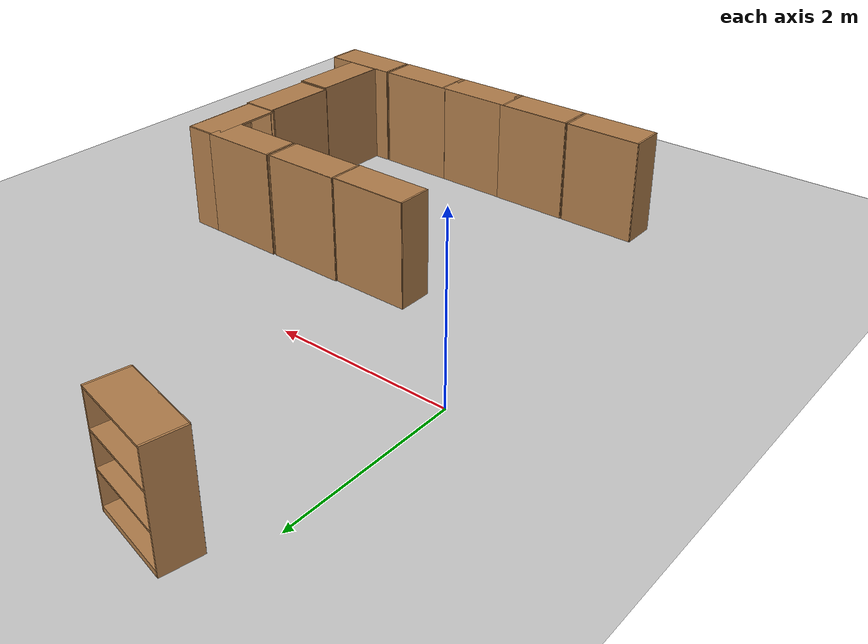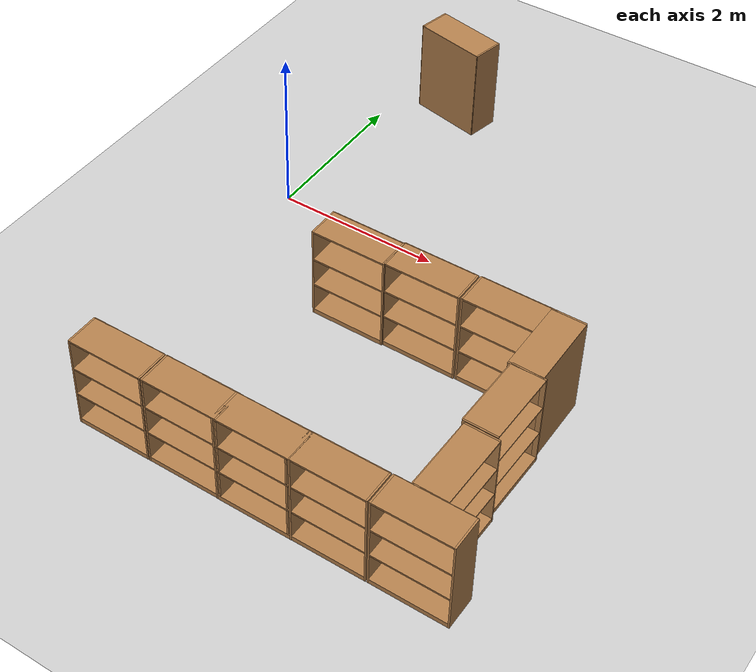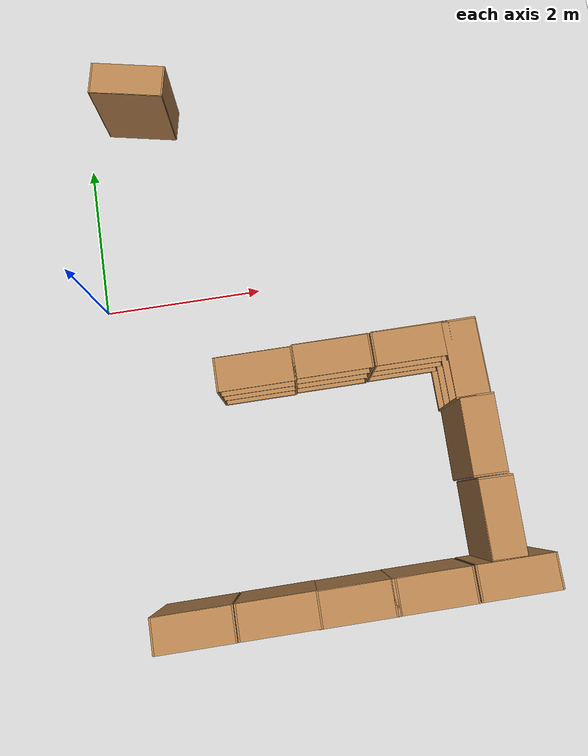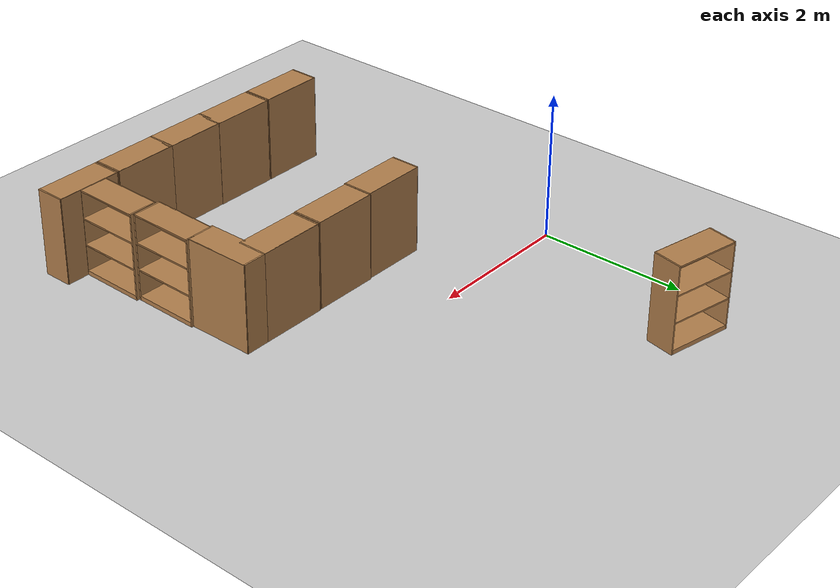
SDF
<sdf version="1.7">
 <world name="default">
  <model name="ground_plane">
   <static>1</static>
   <link name="link">
    <collision name="collision">
     <geometry><plane><normal>0 0 1</normal><size>100 100</size></plane></geometry>
     <surface>
      <contact><collide_bitmask>65535</collide_bitmask></contact>
      <friction><ode><mu>100</mu><mu2>50</mu2></ode></friction>
     </surface>
    </collision>
    <visual name="visual">
     <cast_shadows>0</cast_shadows>
     <geometry><plane><normal>0 0 1</normal><size>100 100</size></plane></geometry>
     <material>
      <script><uri>file://media/materials/scripts/gazebo.material</uri><name>Gazebo/Grey</name></script>
     </material>
    </visual>
   </link>
  </model>
  <model name="bookshelf_4">
   <static>1</static>
   <link name="link">
    <inertial><mass>1</mass></inertial>
    <collision name="back">
     <pose>0 0.005 0.6 0 -0 0</pose>
     <geometry><box><size>0.9 0.01 1.2</size></box></geometry>
    </collision>
    <visual name="visual1">
     <pose>0 0.005 0.6 0 -0 0</pose>
     <geometry><box><size>0.9 0.01 1.2</size></box></geometry>
     <material>
      <script><uri>file://media/materials/scripts/gazebo.material</uri><name>Gazebo/Wood</name></script>
     </material>
    </visual>
    <collision name="left_side">
     <pose>0.45 -0.195 0.6 0 -0 0</pose>
     <geometry><box><size>0.02 0.4 1.2</size></box></geometry>
    </collision>
    <visual name="visual2">
     <pose>0.45 -0.195 0.6 0 -0 0</pose>
     <geometry><box><size>0.02 0.4 1.2</size></box></geometry>
     <material>
      <script><uri>file://media/materials/scripts/gazebo.material</uri><name>Gazebo/Wood</name></script>
     </material>
    </visual>
    <collision name="right_side">
     <pose>-0.45 -0.195 0.6 0 -0 0</pose>
     <geometry><box><size>0.02 0.4 1.2</size></box></geometry>
    </collision>
    <visual name="visual3">
     <pose>-0.45 -0.195 0.6 0 -0 0</pose>
     <geometry><box><size>0.02 0.4 1.2</size></box></geometry>
     <material>
      <script><uri>file://media/materials/scripts/gazebo.material</uri><name>Gazebo/Wood</name></script>
     </material>
    </visual>
    <collision name="bottom">
     <pose>0 -0.195 0.03 0 -0 0</pose>
     <geometry><box><size>0.88 0.4 0.06</size></box></geometry>
    </collision>
    <visual name="visual4">
     <pose>0 -0.195 0.03 0 -0 0</pose>
     <geometry><box><size>0.88 0.4 0.06</size></box></geometry>
     <material>
      <script><uri>file://media/materials/scripts/gazebo.material</uri><name>Gazebo/Wood</name></script>
     </material>
    </visual>
    <collision name="top">
     <pose>0 -0.195 1.19 0 -0 0</pose>
     <geometry><box><size>0.88 0.4 0.02</size></box></geometry>
    </collision>
    <visual name="visual5">
     <pose>0 -0.195 1.19 0 -0 0</pose>
     <geometry><box><size>0.88 0.4 0.02</size></box></geometry>
     <material>
      <script><uri>file://media/materials/scripts/gazebo.material</uri><name>Gazebo/Wood</name></script>
     </material>
    </visual>
    <collision name="low_shelf">
     <pose>0 -0.195 0.43 0 -0 0</pose>
     <geometry><box><size>0.88 0.4 0.02</size></box></geometry>
    </collision>
    <visual name="visual6">
     <pose>0 -0.195 0.43 0 -0 0</pose>
     <geometry><box><size>0.88 0.4 0.02</size></box></geometry>
     <material>
      <script><uri>file://media/materials/scripts/gazebo.material</uri><name>Gazebo/Wood</name></script>
     </material>
    </visual>
    <collision name="high_shelf">
     <pose>0 -0.195 0.8 0 -0 0</pose>
     <geometry><box><size>0.88 0.4 0.02</size></box></geometry>
    </collision>
    <visual name="visual7">
     <pose>0 -0.195 0.8 0 -0 0</pose>
     <geometry><box><size>0.88 0.4 0.02</size></box></geometry>
     <material>
      <script><uri>file://media/materials/scripts/gazebo.material</uri><name>Gazebo/Wood</name></script>
     </material>
    </visual>
   </link>
   <pose>0.772368 -3.75609 0 0 -0 0</pose>
  </model>
  <model name="bookshelf_5">
   <static>1</static>
   <link name="link">
    <inertial><mass>1</mass></inertial>
    <collision name="back">
     <pose>0 0.005 0.6 0 -0 0</pose>
     <geometry><box><size>0.9 0.01 1.2</size></box></geometry>
    </collision>
    <visual name="visual1">
     <pose>0 0.005 0.6 0 -0 0</pose>
     <geometry><box><size>0.9 0.01 1.2</size></box></geometry>
     <material>
      <script><uri>file://media/materials/scripts/gazebo.material</uri><name>Gazebo/Wood</name></script>
     </material>
    </visual>
    <collision name="left_side">
     <pose>0.45 -0.195 0.6 0 -0 0</pose>
     <geometry><box><size>0.02 0.4 1.2</size></box></geometry>
    </collision>
    <visual name="visual2">
     <pose>0.45 -0.195 0.6 0 -0 0</pose>
     <geometry><box><size>0.02 0.4 1.2</size></box></geometry>
     <material>
      <script><uri>file://media/materials/scripts/gazebo.material</uri><name>Gazebo/Wood</name></script>
     </material>
    </visual>
    <collision name="right_side">
     <pose>-0.45 -0.195 0.6 0 -0 0</pose>
     <geometry><box><size>0.02 0.4 1.2</size></box></geometry>
    </collision>
    <visual name="visual3">
     <pose>-0.45 -0.195 0.6 0 -0 0</pose>
     <geometry><box><size>0.02 0.4 1.2</size></box></geometry>
     <material>
      <script><uri>file://media/materials/scripts/gazebo.material</uri><name>Gazebo/Wood</name></script>
     </material>
    </visual>
    <collision name="bottom">
     <pose>0 -0.195 0.03 0 -0 0</pose>
     <geometry><box><size>0.88 0.4 0.06</size></box></geometry>
    </collision>
    <visual name="visual4">
     <pose>0 -0.195 0.03 0 -0 0</pose>
     <geometry><box><size>0.88 0.4 0.06</size></box></geometry>
     <material>
      <script><uri>file://media/materials/scripts/gazebo.material</uri><name>Gazebo/Wood</name></script>
     </material>
    </visual>
    <collision name="top">
     <pose>0 -0.195 1.19 0 -0 0</pose>
     <geometry><box><size>0.88 0.4 0.02</size></box></geometry>
    </collision>
    <visual name="visual5">
     <pose>0 -0.195 1.19 0 -0 0</pose>
     <geometry><box><size>0.88 0.4 0.02</size></box></geometry>
     <material>
      <script><uri>file://media/materials/scripts/gazebo.material</uri><name>Gazebo/Wood</name></script>
     </material>
    </visual>
    <collision name="low_shelf">
     <pose>0 -0.195 0.43 0 -0 0</pose>
     <geometry><box><size>0.88 0.4 0.02</size></box></geometry>
    </collision>
    <visual name="visual6">
     <pose>0 -0.195 0.43 0 -0 0</pose>
     <geometry><box><size>0.88 0.4 0.02</size></box></geometry>
     <material>
      <script><uri>file://media/materials/scripts/gazebo.material</uri><name>Gazebo/Wood</name></script>
     </material>
    </visual>
    <collision name="high_shelf">
     <pose>0 -0.195 0.8 0 -0 0</pose>
     <geometry><box><size>0.88 0.4 0.02</size></box></geometry>
    </collision>
    <visual name="visual7">
     <pose>0 -0.195 0.8 0 -0 0</pose>
     <geometry><box><size>0.88 0.4 0.02</size></box></geometry>
     <material>
      <script><uri>file://media/materials/scripts/gazebo.material</uri><name>Gazebo/Wood</name></script>
     </material>
    </visual>
   </link>
   <pose>1.6996 -3.75399 0 0 -0 0</pose>
  </model>
  <model name="bookshelf_6">
   <static>1</static>
   <link name="link">
    <inertial><mass>1</mass></inertial>
    <collision name="back">
     <pose>0 0.005 0.6 0 -0 0</pose>
     <geometry><box><size>0.9 0.01 1.2</size></box></geometry>
    </collision>
    <visual name="visual1">
     <pose>0 0.005 0.6 0 -0 0</pose>
     <geometry><box><size>0.9 0.01 1.2</size></box></geometry>
     <material>
      <script><uri>file://media/materials/scripts/gazebo.material</uri><name>Gazebo/Wood</name></script>
     </material>
    </visual>
    <collision name="left_side">
     <pose>0.45 -0.195 0.6 0 -0 0</pose>
     <geometry><box><size>0.02 0.4 1.2</size></box></geometry>
    </collision>
    <visual name="visual2">
     <pose>0.45 -0.195 0.6 0 -0 0</pose>
     <geometry><box><size>0.02 0.4 1.2</size></box></geometry>
     <material>
      <script><uri>file://media/materials/scripts/gazebo.material</uri><name>Gazebo/Wood</name></script>
     </material>
    </visual>
    <collision name="right_side">
     <pose>-0.45 -0.195 0.6 0 -0 0</pose>
     <geometry><box><size>0.02 0.4 1.2</size></box></geometry>
    </collision>
    <visual name="visual3">
     <pose>-0.45 -0.195 0.6 0 -0 0</pose>
     <geometry><box><size>0.02 0.4 1.2</size></box></geometry>
     <material>
      <script><uri>file://media/materials/scripts/gazebo.material</uri><name>Gazebo/Wood</name></script>
     </material>
    </visual>
    <collision name="bottom">
     <pose>0 -0.195 0.03 0 -0 0</pose>
     <geometry><box><size>0.88 0.4 0.06</size></box></geometry>
    </collision>
    <visual name="visual4">
     <pose>0 -0.195 0.03 0 -0 0</pose>
     <geometry><box><size>0.88 0.4 0.06</size></box></geometry>
     <material>
      <script><uri>file://media/materials/scripts/gazebo.material</uri><name>Gazebo/Wood</name></script>
     </material>
    </visual>
    <collision name="top">
     <pose>0 -0.195 1.19 0 -0 0</pose>
     <geometry><box><size>0.88 0.4 0.02</size></box></geometry>
    </collision>
    <visual name="visual5">
     <pose>0 -0.195 1.19 0 -0 0</pose>
     <geometry><box><size>0.88 0.4 0.02</size></box></geometry>
     <material>
      <script><uri>file://media/materials/scripts/gazebo.material</uri><name>Gazebo/Wood</name></script>
     </material>
    </visual>
    <collision name="low_shelf">
     <pose>0 -0.195 0.43 0 -0 0</pose>
     <geometry><box><size>0.88 0.4 0.02</size></box></geometry>
    </collision>
    <visual name="visual6">
     <pose>0 -0.195 0.43 0 -0 0</pose>
     <geometry><box><size>0.88 0.4 0.02</size></box></geometry>
     <material>
      <script><uri>file://media/materials/scripts/gazebo.material</uri><name>Gazebo/Wood</name></script>
     </material>
    </visual>
    <collision name="high_shelf">
     <pose>0 -0.195 0.8 0 -0 0</pose>
     <geometry><box><size>0.88 0.4 0.02</size></box></geometry>
    </collision>
    <visual name="visual7">
     <pose>0 -0.195 0.8 0 -0 0</pose>
     <geometry><box><size>0.88 0.4 0.02</size></box></geometry>
     <material>
      <script><uri>file://media/materials/scripts/gazebo.material</uri><name>Gazebo/Wood</name></script>
     </material>
    </visual>
   </link>
   <pose>1.82439 -1.04453 0 0 -0 0</pose>
  </model>
  <model name="bookshelf_7">
   <static>1</static>
   <link name="link">
    <inertial><mass>1</mass></inertial>
    <collision name="back">
     <pose>0 0.005 0.6 0 -0 0</pose>
     <geometry><box><size>0.9 0.01 1.2</size></box></geometry>
    </collision>
    <visual name="visual1">
     <pose>0 0.005 0.6 0 -0 0</pose>
     <geometry><box><size>0.9 0.01 1.2</size></box></geometry>
     <material>
      <script><uri>file://media/materials/scripts/gazebo.material</uri><name>Gazebo/Wood</name></script>
     </material>
    </visual>
    <collision name="left_side">
     <pose>0.45 -0.195 0.6 0 -0 0</pose>
     <geometry><box><size>0.02 0.4 1.2</size></box></geometry>
    </collision>
    <visual name="visual2">
     <pose>0.45 -0.195 0.6 0 -0 0</pose>
     <geometry><box><size>0.02 0.4 1.2</size></box></geometry>
     <material>
      <script><uri>file://media/materials/scripts/gazebo.material</uri><name>Gazebo/Wood</name></script>
     </material>
    </visual>
    <collision name="right_side">
     <pose>-0.45 -0.195 0.6 0 -0 0</pose>
     <geometry><box><size>0.02 0.4 1.2</size></box></geometry>
    </collision>
    <visual name="visual3">
     <pose>-0.45 -0.195 0.6 0 -0 0</pose>
     <geometry><box><size>0.02 0.4 1.2</size></box></geometry>
     <material>
      <script><uri>file://media/materials/scripts/gazebo.material</uri><name>Gazebo/Wood</name></script>
     </material>
    </visual>
    <collision name="bottom">
     <pose>0 -0.195 0.03 0 -0 0</pose>
     <geometry><box><size>0.88 0.4 0.06</size></box></geometry>
    </collision>
    <visual name="visual4">
     <pose>0 -0.195 0.03 0 -0 0</pose>
     <geometry><box><size>0.88 0.4 0.06</size></box></geometry>
     <material>
      <script><uri>file://media/materials/scripts/gazebo.material</uri><name>Gazebo/Wood</name></script>
     </material>
    </visual>
    <collision name="top">
     <pose>0 -0.195 1.19 0 -0 0</pose>
     <geometry><box><size>0.88 0.4 0.02</size></box></geometry>
    </collision>
    <visual name="visual5">
     <pose>0 -0.195 1.19 0 -0 0</pose>
     <geometry><box><size>0.88 0.4 0.02</size></box></geometry>
     <material>
      <script><uri>file://media/materials/scripts/gazebo.material</uri><name>Gazebo/Wood</name></script>
     </material>
    </visual>
    <collision name="low_shelf">
     <pose>0 -0.195 0.43 0 -0 0</pose>
     <geometry><box><size>0.88 0.4 0.02</size></box></geometry>
    </collision>
    <visual name="visual6">
     <pose>0 -0.195 0.43 0 -0 0</pose>
     <geometry><box><size>0.88 0.4 0.02</size></box></geometry>
     <material>
      <script><uri>file://media/materials/scripts/gazebo.material</uri><name>Gazebo/Wood</name></script>
     </material>
    </visual>
    <collision name="high_shelf">
     <pose>0 -0.195 0.8 0 -0 0</pose>
     <geometry><box><size>0.88 0.4 0.02</size></box></geometry>
    </collision>
    <visual name="visual7">
     <pose>0 -0.195 0.8 0 -0 0</pose>
     <geometry><box><size>0.88 0.4 0.02</size></box></geometry>
     <material>
      <script><uri>file://media/materials/scripts/gazebo.material</uri><name>Gazebo/Wood</name></script>
     </material>
    </visual>
   </link>
   <pose>2.56274 -3.75756 0 0 -0 0</pose>
  </model>
  <model name="bookshelf_8">
   <static>1</static>
   <link name="link">
    <inertial><mass>1</mass></inertial>
    <collision name="back">
     <pose>0 0.005 0.6 0 -0 0</pose>
     <geometry><box><size>0.9 0.01 1.2</size></box></geometry>
    </collision>
    <visual name="visual1">
     <pose>0 0.005 0.6 0 -0 0</pose>
     <geometry><box><size>0.9 0.01 1.2</size></box></geometry>
     <material>
      <script><uri>file://media/materials/scripts/gazebo.material</uri><name>Gazebo/Wood</name></script>
     </material>
    </visual>
    <collision name="left_side">
     <pose>0.45 -0.195 0.6 0 -0 0</pose>
     <geometry><box><size>0.02 0.4 1.2</size></box></geometry>
    </collision>
    <visual name="visual2">
     <pose>0.45 -0.195 0.6 0 -0 0</pose>
     <geometry><box><size>0.02 0.4 1.2</size></box></geometry>
     <material>
      <script><uri>file://media/materials/scripts/gazebo.material</uri><name>Gazebo/Wood</name></script>
     </material>
    </visual>
    <collision name="right_side">
     <pose>-0.45 -0.195 0.6 0 -0 0</pose>
     <geometry><box><size>0.02 0.4 1.2</size></box></geometry>
    </collision>
    <visual name="visual3">
     <pose>-0.45 -0.195 0.6 0 -0 0</pose>
     <geometry><box><size>0.02 0.4 1.2</size></box></geometry>
     <material>
      <script><uri>file://media/materials/scripts/gazebo.material</uri><name>Gazebo/Wood</name></script>
     </material>
    </visual>
    <collision name="bottom">
     <pose>0 -0.195 0.03 0 -0 0</pose>
     <geometry><box><size>0.88 0.4 0.06</size></box></geometry>
    </collision>
    <visual name="visual4">
     <pose>0 -0.195 0.03 0 -0 0</pose>
     <geometry><box><size>0.88 0.4 0.06</size></box></geometry>
     <material>
      <script><uri>file://media/materials/scripts/gazebo.material</uri><name>Gazebo/Wood</name></script>
     </material>
    </visual>
    <collision name="top">
     <pose>0 -0.195 1.19 0 -0 0</pose>
     <geometry><box><size>0.88 0.4 0.02</size></box></geometry>
    </collision>
    <visual name="visual5">
     <pose>0 -0.195 1.19 0 -0 0</pose>
     <geometry><box><size>0.88 0.4 0.02</size></box></geometry>
     <material>
      <script><uri>file://media/materials/scripts/gazebo.material</uri><name>Gazebo/Wood</name></script>
     </material>
    </visual>
    <collision name="low_shelf">
     <pose>0 -0.195 0.43 0 -0 0</pose>
     <geometry><box><size>0.88 0.4 0.02</size></box></geometry>
    </collision>
    <visual name="visual6">
     <pose>0 -0.195 0.43 0 -0 0</pose>
     <geometry><box><size>0.88 0.4 0.02</size></box></geometry>
     <material>
      <script><uri>file://media/materials/scripts/gazebo.material</uri><name>Gazebo/Wood</name></script>
     </material>
    </visual>
    <collision name="high_shelf">
     <pose>0 -0.195 0.8 0 -0 0</pose>
     <geometry><box><size>0.88 0.4 0.02</size></box></geometry>
    </collision>
    <visual name="visual7">
     <pose>0 -0.195 0.8 0 -0 0</pose>
     <geometry><box><size>0.88 0.4 0.02</size></box></geometry>
     <material>
      <script><uri>file://media/materials/scripts/gazebo.material</uri><name>Gazebo/Wood</name></script>
     </material>
    </visual>
   </link>
   <pose>2.73157 -1.02877 0 0 -0 0</pose>
  </model>
  <model name="bookshelf_9">
   <static>1</static>
   <link name="link">
    <inertial><mass>1</mass></inertial>
    <collision name="back">
     <pose>0 0.005 0.6 0 -0 0</pose>
     <geometry><box><size>0.9 0.01 1.2</size></box></geometry>
    </collision>
    <visual name="visual1">
     <pose>0 0.005 0.6 0 -0 0</pose>
     <geometry><box><size>0.9 0.01 1.2</size></box></geometry>
     <material>
      <script><uri>file://media/materials/scripts/gazebo.material</uri><name>Gazebo/Wood</name></script>
     </material>
    </visual>
    <collision name="left_side">
     <pose>0.45 -0.195 0.6 0 -0 0</pose>
     <geometry><box><size>0.02 0.4 1.2</size></box></geometry>
    </collision>
    <visual name="visual2">
     <pose>0.45 -0.195 0.6 0 -0 0</pose>
     <geometry><box><size>0.02 0.4 1.2</size></box></geometry>
     <material>
      <script><uri>file://media/materials/scripts/gazebo.material</uri><name>Gazebo/Wood</name></script>
     </material>
    </visual>
    <collision name="right_side">
     <pose>-0.45 -0.195 0.6 0 -0 0</pose>
     <geometry><box><size>0.02 0.4 1.2</size></box></geometry>
    </collision>
    <visual name="visual3">
     <pose>-0.45 -0.195 0.6 0 -0 0</pose>
     <geometry><box><size>0.02 0.4 1.2</size></box></geometry>
     <material>
      <script><uri>file://media/materials/scripts/gazebo.material</uri><name>Gazebo/Wood</name></script>
     </material>
    </visual>
    <collision name="bottom">
     <pose>0 -0.195 0.03 0 -0 0</pose>
     <geometry><box><size>0.88 0.4 0.06</size></box></geometry>
    </collision>
    <visual name="visual4">
     <pose>0 -0.195 0.03 0 -0 0</pose>
     <geometry><box><size>0.88 0.4 0.06</size></box></geometry>
     <material>
      <script><uri>file://media/materials/scripts/gazebo.material</uri><name>Gazebo/Wood</name></script>
     </material>
    </visual>
    <collision name="top">
     <pose>0 -0.195 1.19 0 -0 0</pose>
     <geometry><box><size>0.88 0.4 0.02</size></box></geometry>
    </collision>
    <visual name="visual5">
     <pose>0 -0.195 1.19 0 -0 0</pose>
     <geometry><box><size>0.88 0.4 0.02</size></box></geometry>
     <material>
      <script><uri>file://media/materials/scripts/gazebo.material</uri><name>Gazebo/Wood</name></script>
     </material>
    </visual>
    <collision name="low_shelf">
     <pose>0 -0.195 0.43 0 -0 0</pose>
     <geometry><box><size>0.88 0.4 0.02</size></box></geometry>
    </collision>
    <visual name="visual6">
     <pose>0 -0.195 0.43 0 -0 0</pose>
     <geometry><box><size>0.88 0.4 0.02</size></box></geometry>
     <material>
      <script><uri>file://media/materials/scripts/gazebo.material</uri><name>Gazebo/Wood</name></script>
     </material>
    </visual>
    <collision name="high_shelf">
     <pose>0 -0.195 0.8 0 -0 0</pose>
     <geometry><box><size>0.88 0.4 0.02</size></box></geometry>
    </collision>
    <visual name="visual7">
     <pose>0 -0.195 0.8 0 -0 0</pose>
     <geometry><box><size>0.88 0.4 0.02</size></box></geometry>
     <material>
      <script><uri>file://media/materials/scripts/gazebo.material</uri><name>Gazebo/Wood</name></script>
     </material>
    </visual>
   </link>
   <pose>3.42347 -3.75551 0 0 -0 0</pose>
  </model>
  <model name="bookshelf_10">
   <static>1</static>
   <link name="link">
    <inertial><mass>1</mass></inertial>
    <collision name="back">
     <pose>0 0.005 0.6 0 -0 0</pose>
     <geometry><box><size>0.9 0.01 1.2</size></box></geometry>
    </collision>
    <visual name="visual1">
     <pose>0 0.005 0.6 0 -0 0</pose>
     <geometry><box><size>0.9 0.01 1.2</size></box></geometry>
     <material>
      <script><uri>file://media/materials/scripts/gazebo.material</uri><name>Gazebo/Wood</name></script>
     </material>
    </visual>
    <collision name="left_side">
     <pose>0.45 -0.195 0.6 0 -0 0</pose>
     <geometry><box><size>0.02 0.4 1.2</size></box></geometry>
    </collision>
    <visual name="visual2">
     <pose>0.45 -0.195 0.6 0 -0 0</pose>
     <geometry><box><size>0.02 0.4 1.2</size></box></geometry>
     <material>
      <script><uri>file://media/materials/scripts/gazebo.material</uri><name>Gazebo/Wood</name></script>
     </material>
    </visual>
    <collision name="right_side">
     <pose>-0.45 -0.195 0.6 0 -0 0</pose>
     <geometry><box><size>0.02 0.4 1.2</size></box></geometry>
    </collision>
    <visual name="visual3">
     <pose>-0.45 -0.195 0.6 0 -0 0</pose>
     <geometry><box><size>0.02 0.4 1.2</size></box></geometry>
     <material>
      <script><uri>file://media/materials/scripts/gazebo.material</uri><name>Gazebo/Wood</name></script>
     </material>
    </visual>
    <collision name="bottom">
     <pose>0 -0.195 0.03 0 -0 0</pose>
     <geometry><box><size>0.88 0.4 0.06</size></box></geometry>
    </collision>
    <visual name="visual4">
     <pose>0 -0.195 0.03 0 -0 0</pose>
     <geometry><box><size>0.88 0.4 0.06</size></box></geometry>
     <material>
      <script><uri>file://media/materials/scripts/gazebo.material</uri><name>Gazebo/Wood</name></script>
     </material>
    </visual>
    <collision name="top">
     <pose>0 -0.195 1.19 0 -0 0</pose>
     <geometry><box><size>0.88 0.4 0.02</size></box></geometry>
    </collision>
    <visual name="visual5">
     <pose>0 -0.195 1.19 0 -0 0</pose>
     <geometry><box><size>0.88 0.4 0.02</size></box></geometry>
     <material>
      <script><uri>file://media/materials/scripts/gazebo.material</uri><name>Gazebo/Wood</name></script>
     </material>
    </visual>
    <collision name="low_shelf">
     <pose>0 -0.195 0.43 0 -0 0</pose>
     <geometry><box><size>0.88 0.4 0.02</size></box></geometry>
    </collision>
    <visual name="visual6">
     <pose>0 -0.195 0.43 0 -0 0</pose>
     <geometry><box><size>0.88 0.4 0.02</size></box></geometry>
     <material>
      <script><uri>file://media/materials/scripts/gazebo.material</uri><name>Gazebo/Wood</name></script>
     </material>
    </visual>
    <collision name="high_shelf">
     <pose>0 -0.195 0.8 0 -0 0</pose>
     <geometry><box><size>0.88 0.4 0.02</size></box></geometry>
    </collision>
    <visual name="visual7">
     <pose>0 -0.195 0.8 0 -0 0</pose>
     <geometry><box><size>0.88 0.4 0.02</size></box></geometry>
     <material>
      <script><uri>file://media/materials/scripts/gazebo.material</uri><name>Gazebo/Wood</name></script>
     </material>
    </visual>
   </link>
   <pose>3.66527 -1.02019 0 0 -0 0</pose>
  </model>
  <model name="bookshelf_11">
   <static>1</static>
   <link name="link">
    <inertial><mass>1</mass></inertial>
    <collision name="back">
     <pose>0 0.005 0.6 0 -0 0</pose>
     <geometry><box><size>0.9 0.01 1.2</size></box></geometry>
    </collision>
    <visual name="visual1">
     <pose>0 0.005 0.6 0 -0 0</pose>
     <geometry><box><size>0.9 0.01 1.2</size></box></geometry>
     <material>
      <script><uri>file://media/materials/scripts/gazebo.material</uri><name>Gazebo/Wood</name></script>
     </material>
    </visual>
    <collision name="left_side">
     <pose>0.45 -0.195 0.6 0 -0 0</pose>
     <geometry><box><size>0.02 0.4 1.2</size></box></geometry>
    </collision>
    <visual name="visual2">
     <pose>0.45 -0.195 0.6 0 -0 0</pose>
     <geometry><box><size>0.02 0.4 1.2</size></box></geometry>
     <material>
      <script><uri>file://media/materials/scripts/gazebo.material</uri><name>Gazebo/Wood</name></script>
     </material>
    </visual>
    <collision name="right_side">
     <pose>-0.45 -0.195 0.6 0 -0 0</pose>
     <geometry><box><size>0.02 0.4 1.2</size></box></geometry>
    </collision>
    <visual name="visual3">
     <pose>-0.45 -0.195 0.6 0 -0 0</pose>
     <geometry><box><size>0.02 0.4 1.2</size></box></geometry>
     <material>
      <script><uri>file://media/materials/scripts/gazebo.material</uri><name>Gazebo/Wood</name></script>
     </material>
    </visual>
    <collision name="bottom">
     <pose>0 -0.195 0.03 0 -0 0</pose>
     <geometry><box><size>0.88 0.4 0.06</size></box></geometry>
    </collision>
    <visual name="visual4">
     <pose>0 -0.195 0.03 0 -0 0</pose>
     <geometry><box><size>0.88 0.4 0.06</size></box></geometry>
     <material>
      <script><uri>file://media/materials/scripts/gazebo.material</uri><name>Gazebo/Wood</name></script>
     </material>
    </visual>
    <collision name="top">
     <pose>0 -0.195 1.19 0 -0 0</pose>
     <geometry><box><size>0.88 0.4 0.02</size></box></geometry>
    </collision>
    <visual name="visual5">
     <pose>0 -0.195 1.19 0 -0 0</pose>
     <geometry><box><size>0.88 0.4 0.02</size></box></geometry>
     <material>
      <script><uri>file://media/materials/scripts/gazebo.material</uri><name>Gazebo/Wood</name></script>
     </material>
    </visual>
    <collision name="low_shelf">
     <pose>0 -0.195 0.43 0 -0 0</pose>
     <geometry><box><size>0.88 0.4 0.02</size></box></geometry>
    </collision>
    <visual name="visual6">
     <pose>0 -0.195 0.43 0 -0 0</pose>
     <geometry><box><size>0.88 0.4 0.02</size></box></geometry>
     <material>
      <script><uri>file://media/materials/scripts/gazebo.material</uri><name>Gazebo/Wood</name></script>
     </material>
    </visual>
    <collision name="high_shelf">
     <pose>0 -0.195 0.8 0 -0 0</pose>
     <geometry><box><size>0.88 0.4 0.02</size></box></geometry>
    </collision>
    <visual name="visual7">
     <pose>0 -0.195 0.8 0 -0 0</pose>
     <geometry><box><size>0.88 0.4 0.02</size></box></geometry>
     <material>
      <script><uri>file://media/materials/scripts/gazebo.material</uri><name>Gazebo/Wood</name></script>
     </material>
    </visual>
   </link>
   <pose>4.35568 -3.7533 0 0 -0 0</pose>
  </model>
  <model name="bookshelf_12">
   <static>1</static>
   <link name="link">
    <inertial><mass>1</mass></inertial>
    <collision name="back">
     <pose>0 0.005 0.6 0 -0 0</pose>
     <geometry><box><size>0.9 0.01 1.2</size></box></geometry>
    </collision>
    <visual name="visual1">
     <pose>0 0.005 0.6 0 -0 0</pose>
     <geometry><box><size>0.9 0.01 1.2</size></box></geometry>
     <material>
      <script><uri>file://media/materials/scripts/gazebo.material</uri><name>Gazebo/Wood</name></script>
     </material>
    </visual>
    <collision name="left_side">
     <pose>0.45 -0.195 0.6 0 -0 0</pose>
     <geometry><box><size>0.02 0.4 1.2</size></box></geometry>
    </collision>
    <visual name="visual2">
     <pose>0.45 -0.195 0.6 0 -0 0</pose>
     <geometry><box><size>0.02 0.4 1.2</size></box></geometry>
     <material>
      <script><uri>file://media/materials/scripts/gazebo.material</uri><name>Gazebo/Wood</name></script>
     </material>
    </visual>
    <collision name="right_side">
     <pose>-0.45 -0.195 0.6 0 -0 0</pose>
     <geometry><box><size>0.02 0.4 1.2</size></box></geometry>
    </collision>
    <visual name="visual3">
     <pose>-0.45 -0.195 0.6 0 -0 0</pose>
     <geometry><box><size>0.02 0.4 1.2</size></box></geometry>
     <material>
      <script><uri>file://media/materials/scripts/gazebo.material</uri><name>Gazebo/Wood</name></script>
     </material>
    </visual>
    <collision name="bottom">
     <pose>0 -0.195 0.03 0 -0 0</pose>
     <geometry><box><size>0.88 0.4 0.06</size></box></geometry>
    </collision>
    <visual name="visual4">
     <pose>0 -0.195 0.03 0 -0 0</pose>
     <geometry><box><size>0.88 0.4 0.06</size></box></geometry>
     <material>
      <script><uri>file://media/materials/scripts/gazebo.material</uri><name>Gazebo/Wood</name></script>
     </material>
    </visual>
    <collision name="top">
     <pose>0 -0.195 1.19 0 -0 0</pose>
     <geometry><box><size>0.88 0.4 0.02</size></box></geometry>
    </collision>
    <visual name="visual5">
     <pose>0 -0.195 1.19 0 -0 0</pose>
     <geometry><box><size>0.88 0.4 0.02</size></box></geometry>
     <material>
      <script><uri>file://media/materials/scripts/gazebo.material</uri><name>Gazebo/Wood</name></script>
     </material>
    </visual>
    <collision name="low_shelf">
     <pose>0 -0.195 0.43 0 -0 0</pose>
     <geometry><box><size>0.88 0.4 0.02</size></box></geometry>
    </collision>
    <visual name="visual6">
     <pose>0 -0.195 0.43 0 -0 0</pose>
     <geometry><box><size>0.88 0.4 0.02</size></box></geometry>
     <material>
      <script><uri>file://media/materials/scripts/gazebo.material</uri><name>Gazebo/Wood</name></script>
     </material>
    </visual>
    <collision name="high_shelf">
     <pose>0 -0.195 0.8 0 -0 0</pose>
     <geometry><box><size>0.88 0.4 0.02</size></box></geometry>
    </collision>
    <visual name="visual7">
     <pose>0 -0.195 0.8 0 -0 0</pose>
     <geometry><box><size>0.88 0.4 0.02</size></box></geometry>
     <material>
      <script><uri>file://media/materials/scripts/gazebo.material</uri><name>Gazebo/Wood</name></script>
     </material>
    </visual>
   </link>
   <pose>4.08139 -2.36352 0 0 -0 1.55588</pose>
  </model>
  <model name="bookshelf_13">
   <static>1</static>
   <link name="link">
    <inertial><mass>1</mass></inertial>
    <collision name="back">
     <pose>0 0.005 0.6 0 -0 0</pose>
     <geometry><box><size>0.9 0.01 1.2</size></box></geometry>
    </collision>
    <visual name="visual1">
     <pose>0 0.005 0.6 0 -0 0</pose>
     <geometry><box><size>0.9 0.01 1.2</size></box></geometry>
     <material>
      <script><uri>file://media/materials/scripts/gazebo.material</uri><name>Gazebo/Wood</name></script>
     </material>
    </visual>
    <collision name="left_side">
     <pose>0.45 -0.195 0.6 0 -0 0</pose>
     <geometry><box><size>0.02 0.4 1.2</size></box></geometry>
    </collision>
    <visual name="visual2">
     <pose>0.45 -0.195 0.6 0 -0 0</pose>
     <geometry><box><size>0.02 0.4 1.2</size></box></geometry>
     <material>
      <script><uri>file://media/materials/scripts/gazebo.material</uri><name>Gazebo/Wood</name></script>
     </material>
    </visual>
    <collision name="right_side">
     <pose>-0.45 -0.195 0.6 0 -0 0</pose>
     <geometry><box><size>0.02 0.4 1.2</size></box></geometry>
    </collision>
    <visual name="visual3">
     <pose>-0.45 -0.195 0.6 0 -0 0</pose>
     <geometry><box><size>0.02 0.4 1.2</size></box></geometry>
     <material>
      <script><uri>file://media/materials/scripts/gazebo.material</uri><name>Gazebo/Wood</name></script>
     </material>
    </visual>
    <collision name="bottom">
     <pose>0 -0.195 0.03 0 -0 0</pose>
     <geometry><box><size>0.88 0.4 0.06</size></box></geometry>
    </collision>
    <visual name="visual4">
     <pose>0 -0.195 0.03 0 -0 0</pose>
     <geometry><box><size>0.88 0.4 0.06</size></box></geometry>
     <material>
      <script><uri>file://media/materials/scripts/gazebo.material</uri><name>Gazebo/Wood</name></script>
     </material>
    </visual>
    <collision name="top">
     <pose>0 -0.195 1.19 0 -0 0</pose>
     <geometry><box><size>0.88 0.4 0.02</size></box></geometry>
    </collision>
    <visual name="visual5">
     <pose>0 -0.195 1.19 0 -0 0</pose>
     <geometry><box><size>0.88 0.4 0.02</size></box></geometry>
     <material>
      <script><uri>file://media/materials/scripts/gazebo.material</uri><name>Gazebo/Wood</name></script>
     </material>
    </visual>
    <collision name="low_shelf">
     <pose>0 -0.195 0.43 0 -0 0</pose>
     <geometry><box><size>0.88 0.4 0.02</size></box></geometry>
    </collision>
    <visual name="visual6">
     <pose>0 -0.195 0.43 0 -0 0</pose>
     <geometry><box><size>0.88 0.4 0.02</size></box></geometry>
     <material>
      <script><uri>file://media/materials/scripts/gazebo.material</uri><name>Gazebo/Wood</name></script>
     </material>
    </visual>
    <collision name="high_shelf">
     <pose>0 -0.195 0.8 0 -0 0</pose>
     <geometry><box><size>0.88 0.4 0.02</size></box></geometry>
    </collision>
    <visual name="visual7">
     <pose>0 -0.195 0.8 0 -0 0</pose>
     <geometry><box><size>0.88 0.4 0.02</size></box></geometry>
     <material>
      <script><uri>file://media/materials/scripts/gazebo.material</uri><name>Gazebo/Wood</name></script>
     </material>
    </visual>
   </link>
   <pose>4.44018 -1.46852 0 0 0 -1.56501</pose>
  </model>
  <model name="bookshelf_12_clone">
   <static>1</static>
   <link name="link">
    <inertial><mass>1</mass></inertial>
    <collision name="back">
     <pose>0 0.005 0.6 0 -0 0</pose>
     <geometry><box><size>0.9 0.01 1.2</size></box></geometry>
    </collision>
    <visual name="visual1">
     <pose>0 0.005 0.6 0 -0 0</pose>
     <geometry><box><size>0.9 0.01 1.2</size></box></geometry>
     <material>
      <script><uri>file://media/materials/scripts/gazebo.material</uri><name>Gazebo/Wood</name></script>
     </material>
    </visual>
    <collision name="left_side">
     <pose>0.45 -0.195 0.6 0 -0 0</pose>
     <geometry><box><size>0.02 0.4 1.2</size></box></geometry>
    </collision>
    <visual name="visual2">
     <pose>0.45 -0.195 0.6 0 -0 0</pose>
     <geometry><box><size>0.02 0.4 1.2</size></box></geometry>
     <material>
      <script><uri>file://media/materials/scripts/gazebo.material</uri><name>Gazebo/Wood</name></script>
     </material>
    </visual>
    <collision name="right_side">
     <pose>-0.45 -0.195 0.6 0 -0 0</pose>
     <geometry><box><size>0.02 0.4 1.2</size></box></geometry>
    </collision>
    <visual name="visual3">
     <pose>-0.45 -0.195 0.6 0 -0 0</pose>
     <geometry><box><size>0.02 0.4 1.2</size></box></geometry>
     <material>
      <script><uri>file://media/materials/scripts/gazebo.material</uri><name>Gazebo/Wood</name></script>
     </material>
    </visual>
    <collision name="bottom">
     <pose>0 -0.195 0.03 0 -0 0</pose>
     <geometry><box><size>0.88 0.4 0.06</size></box></geometry>
    </collision>
    <visual name="visual4">
     <pose>0 -0.195 0.03 0 -0 0</pose>
     <geometry><box><size>0.88 0.4 0.06</size></box></geometry>
     <material>
      <script><uri>file://media/materials/scripts/gazebo.material</uri><name>Gazebo/Wood</name></script>
     </material>
    </visual>
    <collision name="top">
     <pose>0 -0.195 1.19 0 -0 0</pose>
     <geometry><box><size>0.88 0.4 0.02</size></box></geometry>
    </collision>
    <visual name="visual5">
     <pose>0 -0.195 1.19 0 -0 0</pose>
     <geometry><box><size>0.88 0.4 0.02</size></box></geometry>
     <material>
      <script><uri>file://media/materials/scripts/gazebo.material</uri><name>Gazebo/Wood</name></script>
     </material>
    </visual>
    <collision name="low_shelf">
     <pose>0 -0.195 0.43 0 -0 0</pose>
     <geometry><box><size>0.88 0.4 0.02</size></box></geometry>
    </collision>
    <visual name="visual6">
     <pose>0 -0.195 0.43 0 -0 0</pose>
     <geometry><box><size>0.88 0.4 0.02</size></box></geometry>
     <material>
      <script><uri>file://media/materials/scripts/gazebo.material</uri><name>Gazebo/Wood</name></script>
     </material>
    </visual>
    <collision name="high_shelf">
     <pose>0 -0.195 0.8 0 -0 0</pose>
     <geometry><box><size>0.88 0.4 0.02</size></box></geometry>
    </collision>
    <visual name="visual7">
     <pose>0 -0.195 0.8 0 -0 0</pose>
     <geometry><box><size>0.88 0.4 0.02</size></box></geometry>
     <material>
      <script><uri>file://media/materials/scripts/gazebo.material</uri><name>Gazebo/Wood</name></script>
     </material>
    </visual>
   </link>
   <pose>4.10782 -3.29268 0 0 -0 1.55588</pose>
  </model>
  <model name="bookshelf_0_clone_3">
   <static>1</static>
   <link name="link">
    <inertial><mass>1</mass></inertial>
    <collision name="back">
     <pose>0 0.005 0.6 0 -0 0</pose>
     <geometry><box><size>0.9 0.01 1.2</size></box></geometry>
    </collision>
    <visual name="visual1">
     <pose>0 0.005 0.6 0 -0 0</pose>
     <geometry><box><size>0.9 0.01 1.2</size></box></geometry>
     <material>
      <script><uri>file://media/materials/scripts/gazebo.material</uri><name>Gazebo/Wood</name></script>
     </material>
    </visual>
    <collision name="left_side">
     <pose>0.45 -0.195 0.6 0 -0 0</pose>
     <geometry><box><size>0.02 0.4 1.2</size></box></geometry>
    </collision>
    <visual name="visual2">
     <pose>0.45 -0.195 0.6 0 -0 0</pose>
     <geometry><box><size>0.02 0.4 1.2</size></box></geometry>
     <material>
      <script><uri>file://media/materials/scripts/gazebo.material</uri><name>Gazebo/Wood</name></script>
     </material>
    </visual>
    <collision name="right_side">
     <pose>-0.45 -0.195 0.6 0 -0 0</pose>
     <geometry><box><size>0.02 0.4 1.2</size></box></geometry>
    </collision>
    <visual name="visual3">
     <pose>-0.45 -0.195 0.6 0 -0 0</pose>
     <geometry><box><size>0.02 0.4 1.2</size></box></geometry>
     <material>
      <script><uri>file://media/materials/scripts/gazebo.material</uri><name>Gazebo/Wood</name></script>
     </material>
    </visual>
    <collision name="bottom">
     <pose>0 -0.195 0.03 0 -0 0</pose>
     <geometry><box><size>0.88 0.4 0.06</size></box></geometry>
    </collision>
    <visual name="visual4">
     <pose>0 -0.195 0.03 0 -0 0</pose>
     <geometry><box><size>0.88 0.4 0.06</size></box></geometry>
     <material>
      <script><uri>file://media/materials/scripts/gazebo.material</uri><name>Gazebo/Wood</name></script>
     </material>
    </visual>
    <collision name="top">
     <pose>0 -0.195 1.19 0 -0 0</pose>
     <geometry><box><size>0.88 0.4 0.02</size></box></geometry>
    </collision>
    <visual name="visual5">
     <pose>0 -0.195 1.19 0 -0 0</pose>
     <geometry><box><size>0.88 0.4 0.02</size></box></geometry>
     <material>
      <script><uri>file://media/materials/scripts/gazebo.material</uri><name>Gazebo/Wood</name></script>
     </material>
    </visual>
    <collision name="low_shelf">
     <pose>0 -0.195 0.43 0 -0 0</pose>
     <geometry><box><size>0.88 0.4 0.02</size></box></geometry>
    </collision>
    <visual name="visual6">
     <pose>0 -0.195 0.43 0 -0 0</pose>
     <geometry><box><size>0.88 0.4 0.02</size></box></geometry>
     <material>
      <script><uri>file://media/materials/scripts/gazebo.material</uri><name>Gazebo/Wood</name></script>
     </material>
    </visual>
    <collision name="high_shelf">
     <pose>0 -0.195 0.8 0 -0 0</pose>
     <geometry><box><size>0.88 0.4 0.02</size></box></geometry>
    </collision>
    <visual name="visual7">
     <pose>0 -0.195 0.8 0 -0 0</pose>
     <geometry><box><size>0.88 0.4 0.02</size></box></geometry>
     <material>
      <script><uri>file://media/materials/scripts/gazebo.material</uri><name>Gazebo/Wood</name></script>
     </material>
    </visual>
   </link>
   <pose>0.732044 2.41417 0 0 -0 2.93607</pose>
  </model>
 </world>
</sdf>
